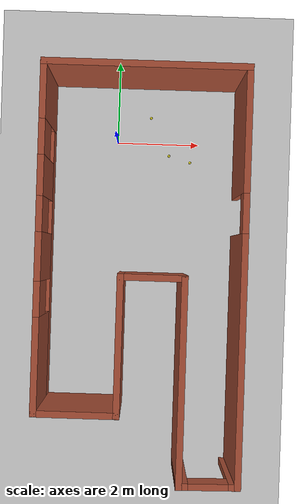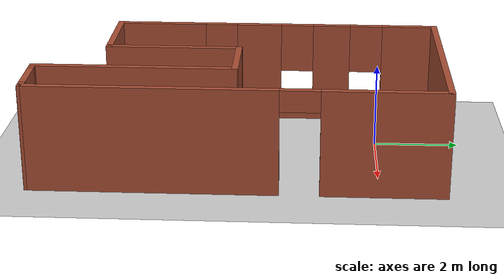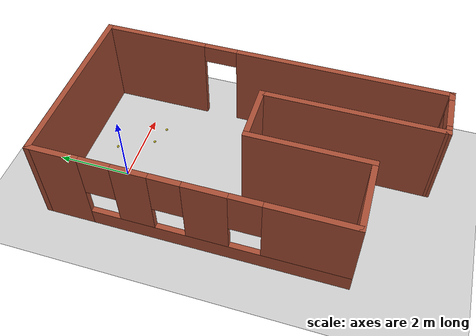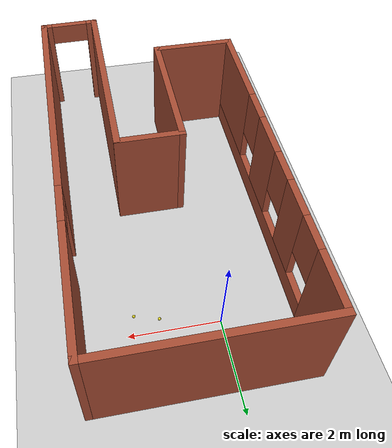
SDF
<sdf version="1.7">
 <world name="default">
  <light name="sun" type="directional">
   <pose>0 0 10 0 -0 0</pose>
   <diffuse>0.8 0.8 0.8 1</diffuse>
   <specular>0.2 0.2 0.2 1</specular>
   <attenuation>
    <range>1000</range>
    <constant>0.9</constant>
    <linear>0.01</linear>
    <quadratic>0.001</quadratic>
   </attenuation>
   <direction>-0.5 0.1 -0.9</direction>
   <spot><inner_angle>0</inner_angle><outer_angle>0</outer_angle><falloff>0</falloff></spot>
  </light>
  <model name="ground_plane">
   <static>1</static>
   <link name="link">
    <collision name="collision">
     <geometry><plane><normal>0 0 1</normal><size>100 100</size></plane></geometry>
     <surface>
      <contact><collide_bitmask>65535</collide_bitmask></contact>
      <friction><ode><mu>100</mu><mu2>50</mu2></ode></friction>
     </surface>
    </collision>
    <visual name="visual">
     <cast_shadows>0</cast_shadows>
     <geometry><plane><normal>0 0 1</normal><size>100 100</size></plane></geometry>
     <material>
      <script><uri>file://media/materials/scripts/gazebo.material</uri><name>Gazebo/Grey</name></script>
     </material>
    </visual>
   </link>
  </model>
  <gravity>0 0 -9.8</gravity>
  <magnetic_field>6e-06 2.3e-05 -4.2e-05</magnetic_field>
  <atmosphere type="adiabatic"/>
  <physics type="ode">
   <max_step_size>0.001</max_step_size>
   <real_time_factor>1</real_time_factor>
   <real_time_update_rate>1000</real_time_update_rate>
  </physics>
  <scene><ambient>0.4 0.4 0.4 1</ambient><background>0.7 0.7 0.7 1</background><shadows>1</shadows></scene>
  <audio><device>default</device></audio>
  <spherical_coordinates>
   <surface_model>EARTH_WGS84</surface_model>
   <latitude_deg>0</latitude_deg>
   <longitude_deg>0</longitude_deg>
   <elevation>0</elevation>
   <heading_deg>0</heading_deg>
  </spherical_coordinates>
  <model name="flat">
   <pose>0.663667 -3.23008 0 0 -0 0</pose>
   <link name="Wall_2">
    <collision name="Wall_2_Collision">
     <geometry><box><size>4.75 0.15 2.5</size></box></geometry>
     <pose>0 0 1.25 0 -0 0</pose>
    </collision>
    <visual name="Wall_2_Visual">
     <pose>0 0 1.25 0 -0 0</pose>
     <geometry><box><size>4.75 0.15 2.5</size></box></geometry>
     <material>
      <script><uri>file://media/materials/scripts/gazebo.material</uri><name>Gazebo/Bricks</name></script>
      <ambient>1 1 1 1</ambient>
     </material>
     <meta><layer>0</layer></meta>
    </visual>
    <pose>-0.000925 4.68569 0 0 -0 3.14159</pose>
   </link>
   <link name="Wall_3">
    <pose>-2.30092 0.760687 0 0 -0 -1.5708</pose>
    <visual name="Wall_3_Visual_0">
     <pose>-3.32226 0 1.25 0 -0 0</pose>
     <geometry><box><size>1.35547 0.15 2.5</size></box></geometry>
     <material>
      <script><uri>file://media/materials/scripts/gazebo.material</uri><name>Gazebo/Bricks</name></script>
      <ambient>1 1 1 1</ambient>
     </material>
     <meta><layer>0</layer></meta>
    </visual>
    <collision name="Wall_3_Collision_0">
     <geometry><box><size>1.35547 0.15 2.5</size></box></geometry>
     <pose>-3.32226 0 1.25 0 -0 0</pose>
    </collision>
    <visual name="Wall_3_Visual_1">
     <pose>0.677737 0 0.25 0 -0 0</pose>
     <geometry><box><size>6.64453 0.15 0.5</size></box></geometry>
     <material>
      <script><uri>file://media/materials/scripts/gazebo.material</uri><name>Gazebo/Bricks</name></script>
      <ambient>1 1 1 1</ambient>
     </material>
     <meta><layer>0</layer></meta>
    </visual>
    <collision name="Wall_3_Collision_1">
     <geometry><box><size>6.64453 0.15 0.5</size></box></geometry>
     <pose>0.677737 0 0.25 0 -0 0</pose>
    </collision>
    <visual name="Wall_3_Visual_2">
     <pose>-1.38485 0 1.5 0 -0 0</pose>
     <geometry><box><size>0.919362 0.15 2</size></box></geometry>
     <material>
      <script><uri>file://media/materials/scripts/gazebo.material</uri><name>Gazebo/Bricks</name></script>
      <ambient>1 1 1 1</ambient>
     </material>
     <meta><layer>0</layer></meta>
    </visual>
    <collision name="Wall_3_Collision_2">
     <geometry><box><size>0.919362 0.15 2</size></box></geometry>
     <pose>-1.38485 0 1.5 0 -0 0</pose>
    </collision>
    <visual name="Wall_3_Visual_3">
     <pose>0.425541 0 1.5 0 -0 0</pose>
     <geometry><box><size>1.10141 0.15 2</size></box></geometry>
     <material>
      <script><uri>file://media/materials/scripts/gazebo.material</uri><name>Gazebo/Bricks</name></script>
      <ambient>1 1 1 1</ambient>
     </material>
     <meta><layer>0</layer></meta>
    </visual>
    <collision name="Wall_3_Collision_3">
     <geometry><box><size>1.10141 0.15 2</size></box></geometry>
     <pose>0.425541 0 1.5 0 -0 0</pose>
    </collision>
    <visual name="Wall_3_Visual_4">
     <pose>2.88812 0 1.5 0 -0 0</pose>
     <geometry><box><size>2.22375 0.15 2</size></box></geometry>
     <material>
      <script><uri>file://media/materials/scripts/gazebo.material</uri><name>Gazebo/Bricks</name></script>
      <ambient>1 1 1 1</ambient>
     </material>
     <meta><layer>0</layer></meta>
    </visual>
    <collision name="Wall_3_Collision_4">
     <geometry><box><size>2.22375 0.15 2</size></box></geometry>
     <pose>2.88812 0 1.5 0 -0 0</pose>
    </collision>
    <visual name="Wall_3_Visual_5">
     <pose>-2.24453 0 1.9 0 -0 0</pose>
     <geometry><box><size>0.8 0.15 1.2</size></box></geometry>
     <material>
      <script><uri>file://media/materials/scripts/gazebo.material</uri><name>Gazebo/Bricks</name></script>
      <ambient>1 1 1 1</ambient>
     </material>
     <meta><layer>0</layer></meta>
    </visual>
    <collision name="Wall_3_Collision_5">
     <geometry><box><size>0.8 0.15 1.2</size></box></geometry>
     <pose>-2.24453 0 1.9 0 -0 0</pose>
    </collision>
    <visual name="Wall_3_Visual_6">
     <pose>-0.525165 0 1.9 0 -0 0</pose>
     <geometry><box><size>0.8 0.15 1.2</size></box></geometry>
     <material>
      <script><uri>file://media/materials/scripts/gazebo.material</uri><name>Gazebo/Bricks</name></script>
      <ambient>1 1 1 1</ambient>
     </material>
     <meta><layer>0</layer></meta>
    </visual>
    <collision name="Wall_3_Collision_6">
     <geometry><box><size>0.8 0.15 1.2</size></box></geometry>
     <pose>-0.525165 0 1.9 0 -0 0</pose>
    </collision>
    <visual name="Wall_3_Visual_7">
     <pose>1.37625 0 1.9 0 -0 0</pose>
     <geometry><box><size>0.8 0.15 1.2</size></box></geometry>
     <material>
      <script><uri>file://media/materials/scripts/gazebo.material</uri><name>Gazebo/Bricks</name></script>
      <ambient>1 1 1 1</ambient>
     </material>
     <meta><layer>0</layer></meta>
    </visual>
    <collision name="Wall_3_Collision_7">
     <geometry><box><size>0.8 0.15 1.2</size></box></geometry>
     <pose>1.37625 0 1.9 0 -0 0</pose>
    </collision>
   </link>
   <link name="Wall_4">
    <collision name="Wall_4_Collision">
     <geometry><box><size>2 0.15 2.5</size></box></geometry>
     <pose>0 0 1.25 0 -0 0</pose>
    </collision>
    <visual name="Wall_4_Visual">
     <pose>0 0 1.25 0 -0 0</pose>
     <geometry><box><size>2 0.15 2.5</size></box></geometry>
     <material>
      <script><uri>file://media/materials/scripts/gazebo.material</uri><name>Gazebo/Bricks</name></script>
      <ambient>1 1 1 1</ambient>
     </material>
     <meta><layer>0</layer></meta>
    </visual>
    <pose>-1.37593 -3.16431 0 0 -0 0</pose>
   </link>
   <link name="Wall_5">
    <collision name="Wall_5_Collision">
     <geometry><box><size>3.25 0.15 2.5</size></box></geometry>
     <pose>0 0 1.25 0 -0 0</pose>
    </collision>
    <visual name="Wall_5_Visual">
     <pose>0 0 1.25 0 -0 0</pose>
     <geometry><box><size>3.25 0.15 2.5</size></box></geometry>
     <material>
      <script><uri>file://media/materials/scripts/gazebo.material</uri><name>Gazebo/Bricks</name></script>
      <ambient>1 1 1 1</ambient>
     </material>
     <meta><layer>0</layer></meta>
    </visual>
    <pose>-0.450925 -1.61431 0 0 -0 1.5708</pose>
   </link>
   <link name="Wall_6">
    <collision name="Wall_6_Collision">
     <geometry><box><size>1.58818 0.15 2.5</size></box></geometry>
     <pose>0 0 1.25 0 -0 0</pose>
    </collision>
    <visual name="Wall_6_Visual">
     <pose>0 0 1.25 0 -0 0</pose>
     <geometry><box><size>1.58818 0.15 2.5</size></box></geometry>
     <material>
      <script><uri>file://media/materials/scripts/gazebo.material</uri><name>Gazebo/Bricks</name></script>
      <ambient>1 1 1 1</ambient>
     </material>
     <meta><layer>0</layer></meta>
    </visual>
    <pose>0.268164 -0.064313 0 0 -0 0</pose>
   </link>
   <link name="Wall_7">
    <collision name="Wall_7_Collision">
     <geometry><box><size>4.75 0.15 2.5</size></box></geometry>
     <pose>0 0 1.25 0 -0 0</pose>
    </collision>
    <visual name="Wall_7_Visual">
     <pose>0 0 1.25 0 -0 0</pose>
     <geometry><box><size>4.75 0.15 2.5</size></box></geometry>
     <material>
      <script><uri>file://media/materials/scripts/gazebo.material</uri><name>Gazebo/Bricks</name></script>
      <ambient>1 1 1 1</ambient>
     </material>
     <meta><layer>0</layer></meta>
    </visual>
    <pose>0.987253 -2.38454 0 0 -0 -1.5708</pose>
   </link>
   <link name="Wall_8">
    <pose>1.64352 -4.67443 0 0 -0 0.01541</pose>
    <visual name="Wall_8_Visual_0">
     <pose>-0.589765 0 1.25 0 -0 0</pose>
     <geometry><box><size>0.283152 0.15 2.5</size></box></geometry>
     <material>
      <script><uri>file://media/materials/scripts/gazebo.material</uri><name>Gazebo/Bricks</name></script>
      <ambient>1 1 1 1</ambient>
     </material>
     <meta><layer>0</layer></meta>
    </visual>
    <collision name="Wall_8_Collision_0">
     <geometry><box><size>0.283152 0.15 2.5</size></box></geometry>
     <pose>-0.589765 0 1.25 0 -0 0</pose>
    </collision>
    <visual name="Wall_8_Visual_1">
     <pose>0.591576 0 1.25 0 -0 0</pose>
     <geometry><box><size>0.27953 0.15 2.5</size></box></geometry>
     <material>
      <script><uri>file://media/materials/scripts/gazebo.material</uri><name>Gazebo/Bricks</name></script>
      <ambient>1 1 1 1</ambient>
     </material>
     <meta><layer>0</layer></meta>
    </visual>
    <collision name="Wall_8_Collision_1">
     <geometry><box><size>0.27953 0.15 2.5</size></box></geometry>
     <pose>0.591576 0 1.25 0 -0 0</pose>
    </collision>
    <visual name="Wall_8_Visual_2">
     <pose>0.001811 0 2.25 0 -0 0</pose>
     <geometry><box><size>0.9 0.15 0.5</size></box></geometry>
     <material>
      <script><uri>file://media/materials/scripts/gazebo.material</uri><name>Gazebo/Bricks</name></script>
      <ambient>1 1 1 1</ambient>
     </material>
     <meta><layer>0</layer></meta>
    </visual>
    <collision name="Wall_8_Collision_2">
     <geometry><box><size>0.9 0.15 0.5</size></box></geometry>
     <pose>0.001811 0 2.25 0 -0 0</pose>
    </collision>
   </link>
   <link name="Wall_9">
    <pose>2.29978 0.010687 0 0 -0 1.5708</pose>
    <visual name="Wall_9_Visual_0">
     <pose>-1.88752 0 1.25 0 -0 0</pose>
     <geometry><box><size>5.72496 0.15 2.5</size></box></geometry>
     <material>
      <script><uri>file://media/materials/scripts/gazebo.material</uri><name>Gazebo/Bricks</name></script>
      <ambient>1 1 1 1</ambient>
     </material>
     <meta><layer>0</layer></meta>
    </visual>
    <collision name="Wall_9_Collision_0">
     <geometry><box><size>5.72496 0.15 2.5</size></box></geometry>
     <pose>-1.88752 0 1.25 0 -0 0</pose>
    </collision>
    <visual name="Wall_9_Visual_1">
     <pose>3.31248 0 1.25 0 -0 0</pose>
     <geometry><box><size>2.87504 0.15 2.5</size></box></geometry>
     <material>
      <script><uri>file://media/materials/scripts/gazebo.material</uri><name>Gazebo/Bricks</name></script>
      <ambient>1 1 1 1</ambient>
     </material>
     <meta><layer>0</layer></meta>
    </visual>
    <collision name="Wall_9_Collision_1">
     <geometry><box><size>2.87504 0.15 2.5</size></box></geometry>
     <pose>3.31248 0 1.25 0 -0 0</pose>
    </collision>
    <visual name="Wall_9_Visual_2">
     <pose>1.42496 0 2.25 0 -0 0</pose>
     <geometry><box><size>0.9 0.15 0.5</size></box></geometry>
     <material>
      <script><uri>file://media/materials/scripts/gazebo.material</uri><name>Gazebo/Bricks</name></script>
      <ambient>1 1 1 1</ambient>
     </material>
     <meta><layer>0</layer></meta>
    </visual>
    <collision name="Wall_9_Collision_2">
     <geometry><box><size>0.9 0.15 0.5</size></box></geometry>
     <pose>1.42496 0 2.25 0 -0 0</pose>
    </collision>
   </link>
   <static>1</static>
  </model>
  <model name="tennis_ball">
   <link name="link">
    <inertial>
     <mass>1</mass>
     <inertia><ixx>0.1</ixx><ixy>0</ixy><ixz>0</ixz><iyy>0.1</iyy><iyz>0</iyz><izz>0.1</izz></inertia>
    </inertial>
    <visual name="visual">
     <geometry><sphere><radius>0.033</radius></sphere></geometry>
     <material>
      <script><name>Gazebo/Yellow</name><uri>file://media/materials/scripts/gazebo.material</uri></script>
      <shader type="pixel"><normal_map>__default__</normal_map></shader>
      <ambient>1 1 0 1</ambient>
      <diffuse>1 1 0 1</diffuse>
      <emissive>0 0 0 1</emissive>
     </material>
    </visual>
    <collision name="collision">
     <geometry><sphere><radius>0.033</radius></sphere></geometry>
     <surface>
      <friction>
       <ode><mu>1</mu><mu2>1</mu2><fdir1>0 0 0</fdir1><slip1>0</slip1><slip2>0</slip2></ode>
       <torsional>
        <coefficient>1</coefficient>
        <patch_radius>0</patch_radius>
        <surface_radius>0</surface_radius>
        <use_patch_radius>1</use_patch_radius>
        <ode><slip>0</slip></ode>
       </torsional>
      </friction>
      <bounce><restitution_coefficient>0</restitution_coefficient><threshold>1e+06</threshold></bounce>
      <contact>
       <collide_without_contact>0</collide_without_contact>
       <collide_without_contact_bitmask>1</collide_without_contact_bitmask>
       <collide_bitmask>1</collide_bitmask>
       <ode>
        <soft_cfm>0</soft_cfm>
        <soft_erp>0.2</soft_erp>
        <kp>1e+13</kp>
        <kd>1</kd>
        <max_vel>0.01</max_vel>
        <min_depth>0</min_depth>
       </ode>
       <bullet>
        <split_impulse>1</split_impulse>
        <split_impulse_penetration_threshold>-0.01</split_impulse_penetration_threshold>
        <soft_cfm>0</soft_cfm>
        <soft_erp>0.2</soft_erp>
        <kp>1e+13</kp>
        <kd>1</kd>
       </bullet>
      </contact>
     </surface>
    </collision>
   </link>
   <static>0</static>
   <pose>1.27879 -0.28473 0.033 0 -0 0</pose>
  </model>
  <model name="tennis_ball_0">
   <link name="link">
    <inertial>
     <mass>1</mass>
     <inertia><ixx>0.1</ixx><ixy>0</ixy><ixz>0</ixz><iyy>0.1</iyy><iyz>0</iyz><izz>0.1</izz></inertia>
    </inertial>
    <visual name="visual">
     <geometry><sphere><radius>0.033</radius></sphere></geometry>
     <material>
      <script><name>Gazebo/Yellow</name><uri>file://media/materials/scripts/gazebo.material</uri></script>
      <shader type="pixel"><normal_map>__default__</normal_map></shader>
      <ambient>1 1 0 1</ambient>
      <diffuse>1 1 0 1</diffuse>
      <emissive>0 0 0 1</emissive>
     </material>
    </visual>
    <collision name="collision">
     <geometry><sphere><radius>0.033</radius></sphere></geometry>
     <surface>
      <friction>
       <ode><mu>1</mu><mu2>1</mu2><fdir1>0 0 0</fdir1><slip1>0</slip1><slip2>0</slip2></ode>
       <torsional>
        <coefficient>1</coefficient>
        <patch_radius>0</patch_radius>
        <surface_radius>0</surface_radius>
        <use_patch_radius>1</use_patch_radius>
        <ode><slip>0</slip></ode>
       </torsional>
      </friction>
      <bounce><restitution_coefficient>0</restitution_coefficient><threshold>1e+06</threshold></bounce>
      <contact>
       <collide_without_contact>0</collide_without_contact>
       <collide_without_contact_bitmask>1</collide_without_contact_bitmask>
       <collide_bitmask>1</collide_bitmask>
       <ode>
        <soft_cfm>0</soft_cfm>
        <soft_erp>0.2</soft_erp>
        <kp>1e+13</kp>
        <kd>1</kd>
        <max_vel>0.01</max_vel>
        <min_depth>0</min_depth>
       </ode>
       <bullet>
        <split_impulse>1</split_impulse>
        <split_impulse_penetration_threshold>-0.01</split_impulse_penetration_threshold>
        <soft_cfm>0</soft_cfm>
        <soft_erp>0.2</soft_erp>
        <kp>1e+13</kp>
        <kd>1</kd>
       </bullet>
      </contact>
     </surface>
    </collision>
   </link>
   <static>0</static>
   <pose>0.803894 0.651993 0.033 0 -0 0</pose>
  </model>
  <model name="tennis_ball_1">
   <link name="link">
    <inertial>
     <mass>1</mass>
     <inertia><ixx>0.1</ixx><ixy>0</ixy><ixz>0</ixz><iyy>0.1</iyy><iyz>0</iyz><izz>0.1</izz></inertia>
    </inertial>
    <visual name="visual">
     <geometry><sphere><radius>0.033</radius></sphere></geometry>
     <material>
      <script><name>Gazebo/Yellow</name><uri>file://media/materials/scripts/gazebo.material</uri></script>
      <shader type="pixel"><normal_map>__default__</normal_map></shader>
      <ambient>1 1 0 1</ambient>
      <diffuse>1 1 0 1</diffuse>
      <emissive>0 0 0 1</emissive>
     </material>
    </visual>
    <collision name="collision">
     <geometry><sphere><radius>0.033</radius></sphere></geometry>
     <surface>
      <friction>
       <ode><mu>1</mu><mu2>1</mu2><fdir1>0 0 0</fdir1><slip1>0</slip1><slip2>0</slip2></ode>
       <torsional>
        <coefficient>1</coefficient>
        <patch_radius>0</patch_radius>
        <surface_radius>0</surface_radius>
        <use_patch_radius>1</use_patch_radius>
        <ode><slip>0</slip></ode>
       </torsional>
      </friction>
      <bounce><restitution_coefficient>0</restitution_coefficient><threshold>1e+06</threshold></bounce>
      <contact>
       <collide_without_contact>0</collide_without_contact>
       <collide_without_contact_bitmask>1</collide_without_contact_bitmask>
       <collide_bitmask>1</collide_bitmask>
       <ode>
        <soft_cfm>0</soft_cfm>
        <soft_erp>0.2</soft_erp>
        <kp>1e+13</kp>
        <kd>1</kd>
        <max_vel>0.01</max_vel>
        <min_depth>0</min_depth>
       </ode>
       <bullet>
        <split_impulse>1</split_impulse>
        <split_impulse_penetration_threshold>-0.01</split_impulse_penetration_threshold>
        <soft_cfm>0</soft_cfm>
        <soft_erp>0.2</soft_erp>
        <kp>1e+13</kp>
        <kd>1</kd>
       </bullet>
      </contact>
     </surface>
    </collision>
   </link>
   <static>0</static>
   <pose>1.80807 -0.441387 0.033 0 -0 0</pose>
  </model>
 </world>
</sdf>
